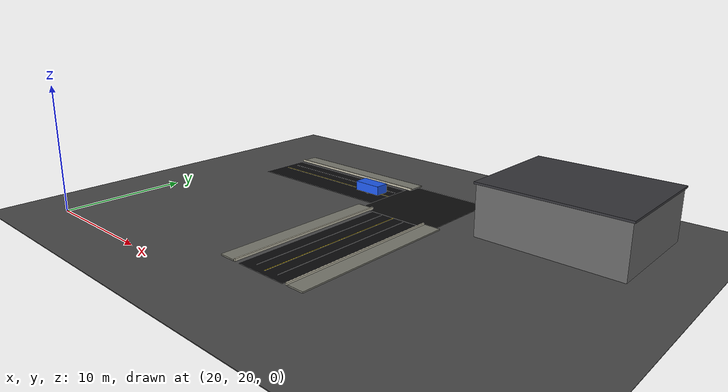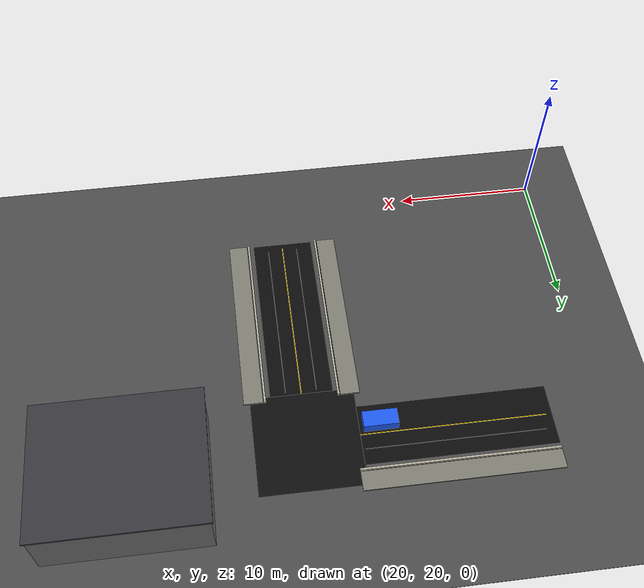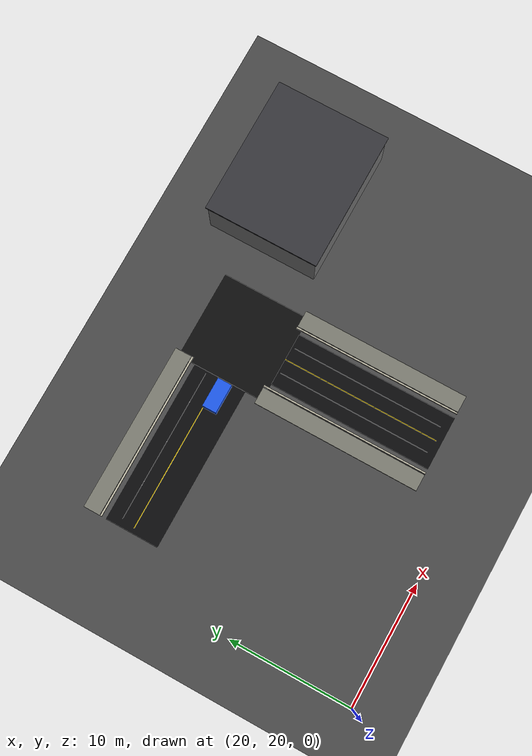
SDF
<sdf version="1.9">
 <world name="smart_city_world">
  <model name="ground">
   <static>true</static>
   <link name="link">
    <collision name="collision"><geometry><box><size>145 145 0.05</size></box></geometry></collision>
    <visual name="visual">
     <geometry><box><size>145 145 0.05</size></box></geometry>
     <material><ambient>0.30 0.30 0.30 1</ambient><diffuse>0.30 0.30 0.30 1</diffuse></material>
    </visual>
   </link>
  </model>
  <model name="road_e4">
   <static>true</static>
   <pose>30.000 40.000 0.018 0 0 0.000000</pose>
   <link name="link">
    <collision name="collision"><geometry><box><size>13.600 4.350 0.030</size></box></geometry></collision>
    <visual name="visual">
     <geometry><box><size>13.600 4.350 0.030</size></box></geometry>
     <material><ambient>0.045 0.047 0.05 1</ambient><diffuse>0.045 0.047 0.05 1</diffuse></material>
    </visual>
   </link>
  </model>
  <model name="center_line_e4">
   <static>true</static>
   <pose>30.000 40.000 0.052 0 0 0.000000</pose>
   <link name="link">
    <visual name="visual">
     <geometry><box><size>12.800 0.070 0.010</size></box></geometry>
     <material><ambient>1 0.86 0.05 1</ambient><diffuse>1 0.86 0.05 1</diffuse></material>
    </visual>
   </link>
  </model>
  <model name="sidewalk_e4_L">
   <static>true</static>
   <pose>30.000 43.350 0.075 0 0 0.000000</pose>
   <link name="link">
    <visual name="visual">
     <geometry><box><size>13.600 1.350 0.100</size></box></geometry>
     <material><ambient>0.5 0.5 0.46 1</ambient><diffuse>0.5 0.5 0.46 1</diffuse></material>
    </visual>
   </link>
  </model>
  <model name="curb_e4_L">
   <static>true</static>
   <pose>30.000 42.550 0.130 0 0 0.000000</pose>
   <link name="link">
    <visual name="visual">
     <geometry><box><size>13.600 0.120 0.180</size></box></geometry>
     <material><ambient>0.8 0.78 0.7 1</ambient><diffuse>0.8 0.78 0.7 1</diffuse></material>
    </visual>
   </link>
  </model>
  <model name="edge_line_e4_L">
   <static>true</static>
   <pose>30.000 41.080 0.054 0 0 0.000000</pose>
   <link name="link">
    <visual name="visual">
     <geometry><box><size>12.400 0.035 0.010</size></box></geometry>
     <material><ambient>0.85 0.85 0.85 1</ambient><diffuse>0.85 0.85 0.85 1</diffuse></material>
    </visual>
   </link>
  </model>
  <model name="road_e37">
   <static>true</static>
   <pose>40.000 30.000 0.018 0 0 -1.570796</pose>
   <link name="link">
    <collision name="collision"><geometry><box><size>13.600 4.350 0.030</size></box></geometry></collision>
    <visual name="visual">
     <geometry><box><size>13.600 4.350 0.030</size></box></geometry>
     <material><ambient>0.045 0.047 0.05 1</ambient><diffuse>0.045 0.047 0.05 1</diffuse></material>
    </visual>
   </link>
  </model>
  <model name="center_line_e37">
   <static>true</static>
   <pose>40.000 30.000 0.052 0 0 -1.570796</pose>
   <link name="link">
    <visual name="visual">
     <geometry><box><size>12.800 0.070 0.010</size></box></geometry>
     <material><ambient>1 0.86 0.05 1</ambient><diffuse>1 0.86 0.05 1</diffuse></material>
    </visual>
   </link>
  </model>
  <model name="sidewalk_e37_L">
   <static>true</static>
   <pose>43.350 30.000 0.075 0 0 -1.570796</pose>
   <link name="link">
    <visual name="visual">
     <geometry><box><size>13.600 1.350 0.100</size></box></geometry>
     <material><ambient>0.5 0.5 0.46 1</ambient><diffuse>0.5 0.5 0.46 1</diffuse></material>
    </visual>
   </link>
  </model>
  <model name="curb_e37_L">
   <static>true</static>
   <pose>42.550 30.000 0.130 0 0 -1.570796</pose>
   <link name="link">
    <visual name="visual">
     <geometry><box><size>13.600 0.120 0.180</size></box></geometry>
     <material><ambient>0.8 0.78 0.7 1</ambient><diffuse>0.8 0.78 0.7 1</diffuse></material>
    </visual>
   </link>
  </model>
  <model name="edge_line_e37_L">
   <static>true</static>
   <pose>41.080 30.000 0.054 0 0 -1.570796</pose>
   <link name="link">
    <visual name="visual">
     <geometry><box><size>12.400 0.035 0.010</size></box></geometry>
     <material><ambient>0.85 0.85 0.85 1</ambient><diffuse>0.85 0.85 0.85 1</diffuse></material>
    </visual>
   </link>
  </model>
  <model name="sidewalk_e37_R">
   <static>true</static>
   <pose>36.650 30.000 0.075 0 0 -1.570796</pose>
   <link name="link">
    <visual name="visual">
     <geometry><box><size>13.600 1.350 0.100</size></box></geometry>
     <material><ambient>0.5 0.5 0.46 1</ambient><diffuse>0.5 0.5 0.46 1</diffuse></material>
    </visual>
   </link>
  </model>
  <model name="curb_e37_R">
   <static>true</static>
   <pose>37.450 30.000 0.130 0 0 -1.570796</pose>
   <link name="link">
    <visual name="visual">
     <geometry><box><size>13.600 0.120 0.180</size></box></geometry>
     <material><ambient>0.8 0.78 0.7 1</ambient><diffuse>0.8 0.78 0.7 1</diffuse></material>
    </visual>
   </link>
  </model>
  <model name="edge_line_e37_R">
   <static>true</static>
   <pose>38.920 30.000 0.054 0 0 -1.570796</pose>
   <link name="link">
    <visual name="visual">
     <geometry><box><size>12.400 0.035 0.010</size></box></geometry>
     <material><ambient>0.85 0.85 0.85 1</ambient><diffuse>0.85 0.85 0.85 1</diffuse></material>
    </visual>
   </link>
  </model>
  <model name="intersection_plate_n5">
   <static>true</static>
   <pose>40.000 40.000 0.025 0 0 0.000000</pose>
   <link name="link">
    <collision name="collision"><geometry><box><size>7.200 7.200 0.035</size></box></geometry></collision>
    <visual name="visual">
     <geometry><box><size>7.200 7.200 0.035</size></box></geometry>
     <material><ambient>0.055 0.055 0.058 1</ambient><diffuse>0.055 0.055 0.058 1</diffuse></material>
    </visual>
   </link>
  </model>
  <model name="warehouse">
   <static>true</static>
   <pose>52.000 42.000 2.000 0 0 0.000000</pose>
   <link name="link">
    <collision name="collision"><geometry><box><size>11.000 9.000 4.000</size></box></geometry></collision>
    <visual name="visual">
     <geometry><box><size>11.000 9.000 4.000</size></box></geometry>
     <material><ambient>0.42 0.42 0.42 1</ambient><diffuse>0.42 0.42 0.42 1</diffuse></material>
    </visual>
   </link>
  </model>
  <model name="warehouse_roof">
   <static>true</static>
   <pose>52.000 42.000 4.080 0 0 0.000000</pose>
   <link name="link">
    <visual name="visual">
     <geometry><box><size>11.250 9.250 0.160</size></box></geometry>
     <material><ambient>0.22 0.22 0.24 1</ambient><diffuse>0.22 0.22 0.24 1</diffuse></material>
    </visual>
   </link>
  </model>
  <model name="private_car_2">
   <pose>35.000 39.400 0.28 0 0 3.1400</pose>
   <link name="base_link">
    <inertial>
     <pose>0 0 0.18 0 0 0</pose>
     <mass>1200</mass>
     <inertia><ixx>190</ixx><iyy>635</iyy><izz>710</izz><ixy>0</ixy><ixz>0</ixz><iyz>0</iyz></inertia>
    </inertial>
    <collision name="body_collision">
     <pose>0 0 0.48 0 0 0</pose>
     <geometry><box><size>2.4 1.15 0.75</size></box></geometry>
     <surface>
      <friction><ode><mu>4.0</mu><mu2>4.0</mu2><slip1>0.0</slip1><slip2>0.0</slip2></ode></friction>
      <contact>
       <ode><kp>1200000</kp><kd>24000</kd><max_vel>0.05</max_vel><min_depth>0.001</min_depth></ode>
      </contact>
      <bounce><restitution_coefficient>0.0</restitution_coefficient><threshold>100000.0</threshold></bounce>
     </surface>
    </collision>
    <visual name="body_visual">
     <pose>0 0 0.48 0 0 0</pose>
     <geometry><box><size>2.4 1.15 0.75</size></box></geometry>
     <material><ambient>0.12 0.36 0.95 1</ambient><diffuse>0.12 0.36 0.95 1</diffuse></material>
    </visual>
    <sensor name="lidar" type="gpu_lidar">
     <pose>1.220 0 1.250 0 0 0</pose>
     <topic>/private_car_2/scan</topic>
     <update_rate>10</update_rate>
     <lidar>
      <scan>
       <horizontal>
        <samples>360</samples>
        <resolution>1</resolution>
        <min_angle>-3.14159</min_angle>
        <max_angle>3.14159</max_angle>
       </horizontal>
      </scan>
      <range><min>0.12</min><max>18.0</max><resolution>0.03</resolution></range>
     </lidar>
     <always_on>1</always_on>
     <visualize>false</visualize>
    </sensor>
   </link>
   <link name="left_wheel">
    <pose>0 0.425 0.170 1.5708 0 0</pose>
    <collision name="collision">
     <geometry><cylinder><radius>0.17</radius><length>0.16</length></cylinder></geometry>
     <surface>
      <friction><ode><mu>4.0</mu><mu2>4.0</mu2><slip1>0.0</slip1><slip2>0.0</slip2></ode></friction>
      <contact>
       <ode><kp>1200000</kp><kd>24000</kd><max_vel>0.05</max_vel><min_depth>0.001</min_depth></ode>
      </contact>
      <bounce><restitution_coefficient>0.0</restitution_coefficient><threshold>100000.0</threshold></bounce>
     </surface>
    </collision>
    <visual name="visual">
     <geometry><cylinder><radius>0.17</radius><length>0.16</length></cylinder></geometry>
     <material><ambient>0.01 0.01 0.01 1</ambient><diffuse>0.01 0.01 0.01 1</diffuse></material>
    </visual>
   </link>
   <link name="right_wheel">
    <pose>0 -0.425 0.170 1.5708 0 0</pose>
    <collision name="collision">
     <geometry><cylinder><radius>0.17</radius><length>0.16</length></cylinder></geometry>
     <surface>
      <friction><ode><mu>4.0</mu><mu2>4.0</mu2><slip1>0.0</slip1><slip2>0.0</slip2></ode></friction>
      <contact>
       <ode><kp>1200000</kp><kd>24000</kd><max_vel>0.05</max_vel><min_depth>0.001</min_depth></ode>
      </contact>
      <bounce><restitution_coefficient>0.0</restitution_coefficient><threshold>100000.0</threshold></bounce>
     </surface>
    </collision>
    <visual name="visual">
     <geometry><cylinder><radius>0.17</radius><length>0.16</length></cylinder></geometry>
     <material><ambient>0.01 0.01 0.01 1</ambient><diffuse>0.01 0.01 0.01 1</diffuse></material>
    </visual>
   </link>
   <joint name="left_wheel_joint" type="revolute">
    <parent>base_link</parent>
    <child>left_wheel</child>
    <axis>
     <xyz>0 0 1</xyz>
     <limit><lower>-1e16</lower><upper>1e16</upper></limit>
     <dynamics><damping>2.5</damping><friction>0.8</friction></dynamics>
    </axis>
   </joint>
   <joint name="right_wheel_joint" type="revolute">
    <parent>base_link</parent>
    <child>right_wheel</child>
    <axis>
     <xyz>0 0 1</xyz>
     <limit><lower>-1e16</lower><upper>1e16</upper></limit>
     <dynamics><damping>2.5</damping><friction>0.8</friction></dynamics>
    </axis>
   </joint>
   <plugin filename="gz-sim-diff-drive-system" name="gz::sim::systems::DiffDrive">
    <left_joint>left_wheel_joint</left_joint>
    <right_joint>right_wheel_joint</right_joint>
    <wheel_separation>0.85</wheel_separation>
    <wheel_radius>0.17</wheel_radius>
    <topic>/private_car_2/cmd_vel</topic>
    <odom_topic>/private_car_2/odom</odom_topic>
    <frame_id>private_car_2/odom</frame_id>
    <child_frame_id>private_car_2/base_link</child_frame_id>
    <odom_publish_frequency>30</odom_publish_frequency>
   </plugin>
   <plugin filename="libmodel_world_pose_publisher.so" name="smart_city::ModelWorldPosePublisher"/>
  </model>
 </world>
</sdf>
